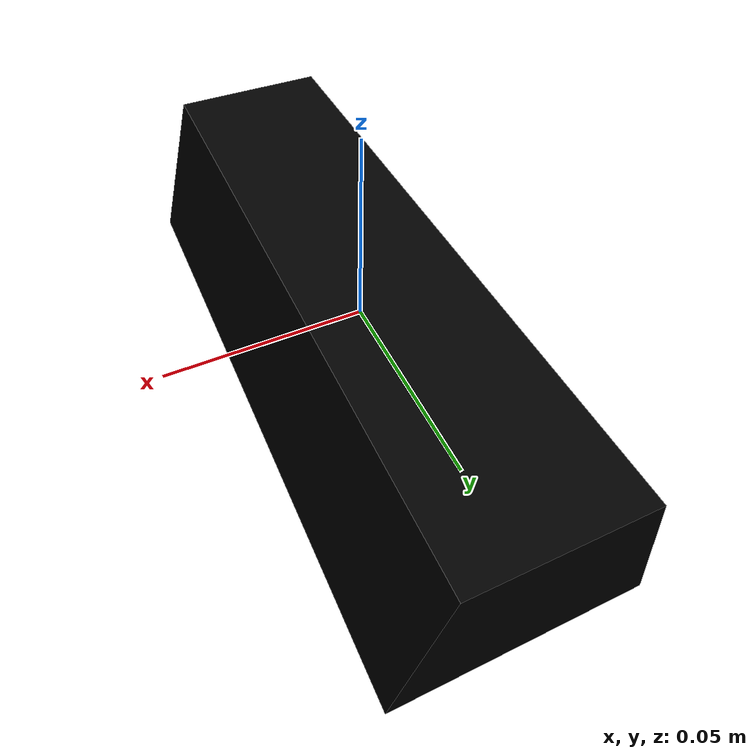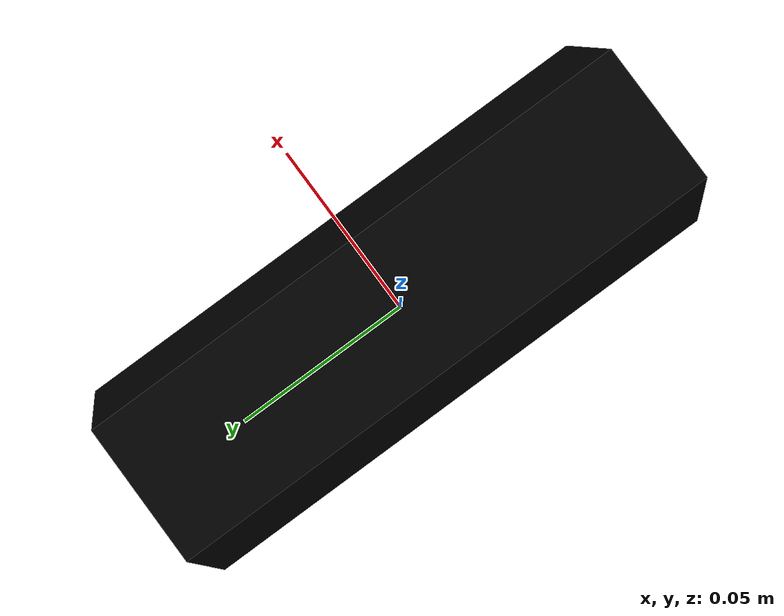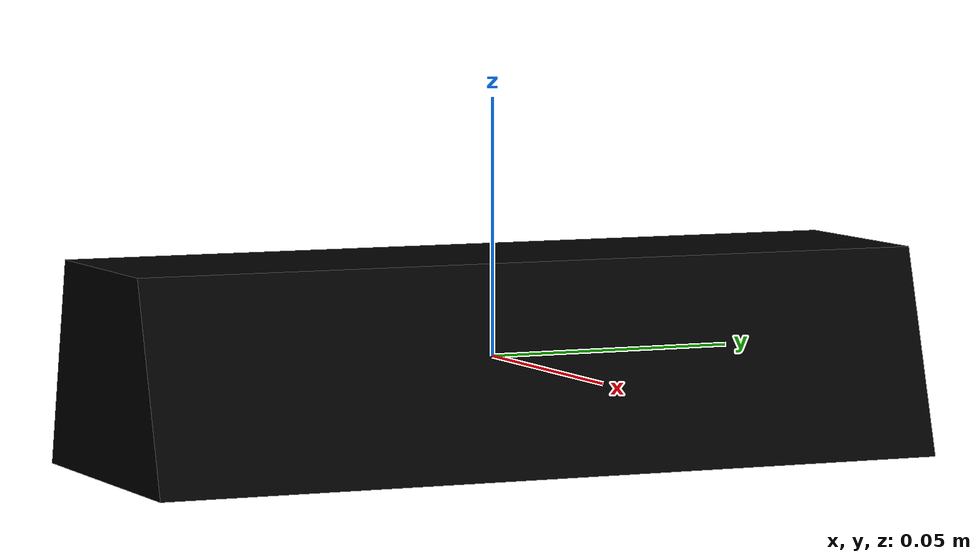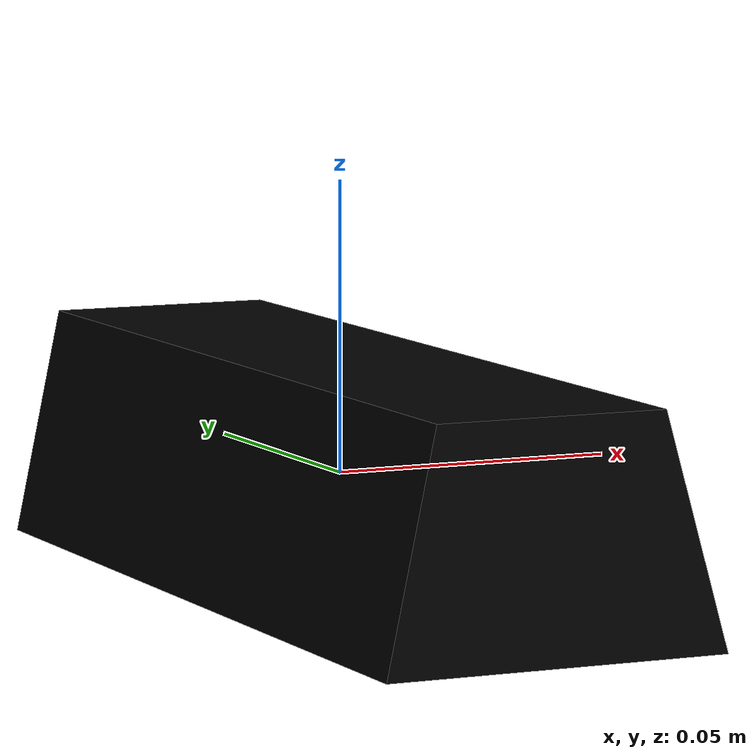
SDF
<?xml version="1.0"?>
<sdf version="1.7">
  <model name="t_shape">
    <link name="vertical_link">
      <inertial>
        <pose>0 0 0 0 0 0</pose>
        <mass>1</mass>
        <!-- Inertia values were calculated to be consistent with the mass and
             geometry size, assuming a uniform density. -->
        <inertia>
            <ixx>0.003</ixx>
            <iyy>0.003 </iyy>
            <izz>0.006 </izz>
            <ixy>0.0</ixy>
            <ixz>0.0</ixz>
            <iyz>0.0</iyz>
        </inertia>
      </inertial>

      <visual name="vertical_link">
        <pose>0 0 0 0 0 0</pose>
        <geometry>
          <mesh>
            <uri>trapezoid.obj</uri>
          </mesh>
        </geometry>
        <material>
          <diffuse>0 0 0 1</diffuse>
        </material>
      </visual>
      <collision name="vertical_link_volume">
        <pose>0 0 0 0 0 0</pose>
            <geometry>
          <mesh>
            <uri>trapezoid.obj</uri>
          </mesh>
        </geometry>
        <drake:proximity_properties>
          <drake:compliant_hydroelastic/>
          <drake:hydroelastic_modulus> 3.0e7 </drake:hydroelastic_modulus>
          <drake:mesh_resolution_hint> 0.18 </drake:mesh_resolution_hint>
          <drake:hunt_crossley_dissipation>10</drake:hunt_crossley_dissipation>
          <drake:mu_dynamic>0.3</drake:mu_dynamic>
        </drake:proximity_properties>
      </collision>
      <collision name="corner_nxynz_">
        <geometry>
          <sphere>
            <radius>0.001</radius>
          </sphere>
        </geometry>
        <drake:proximity_properties>
        <drake:mu_dynamic>0.3</drake:mu_dynamic>
        </drake:proximity_properties>
        <pose> -0.02850000 0.08000000 -0.02000000 0 0 0</pose>
      </collision>
      <collision name="corner_nxnynz">
        <geometry>
          <sphere>
            <radius>0.001</radius>
          </sphere>
        </geometry>
        <drake:proximity_properties>
        <drake:mu_dynamic>0.3</drake:mu_dynamic>
        </drake:proximity_properties>
        <pose> -0.02850000 -0.08000000 -0.02000000 0 0 0</pose>
      </collision>
      <collision name="corner_xynz">
        <geometry>
          <sphere>
            <radius>0.001</radius>
          </sphere>
        </geometry>
        <drake:proximity_properties>
        <drake:mu_dynamic>0.3</drake:mu_dynamic>
        </drake:proximity_properties>
        <pose> 0.03150000 0.00000000 -0.02000000 0 0 0</pose>
      </collision>
    </link>
  </model>
</sdf>
